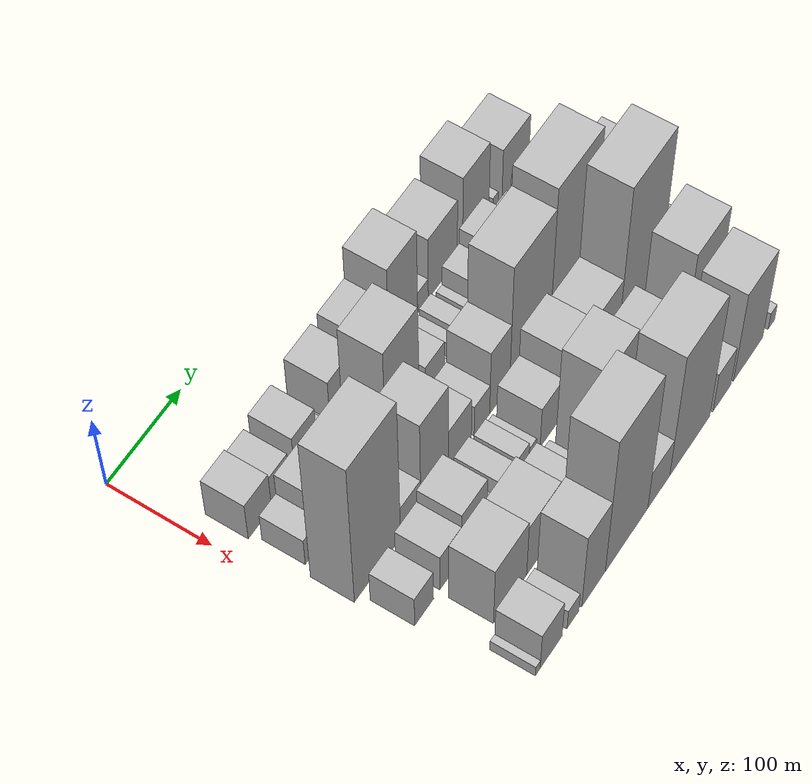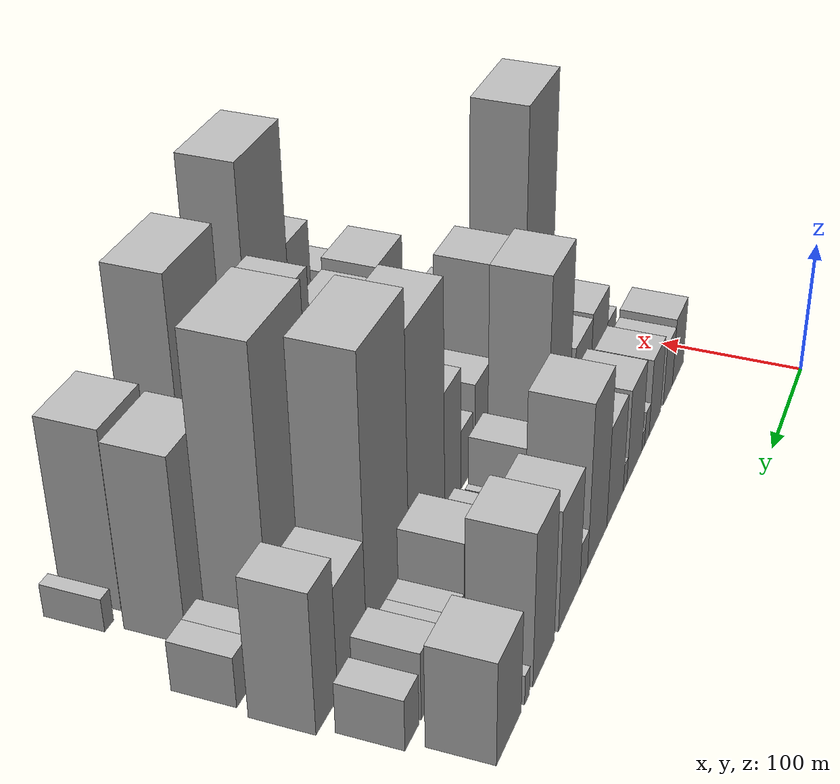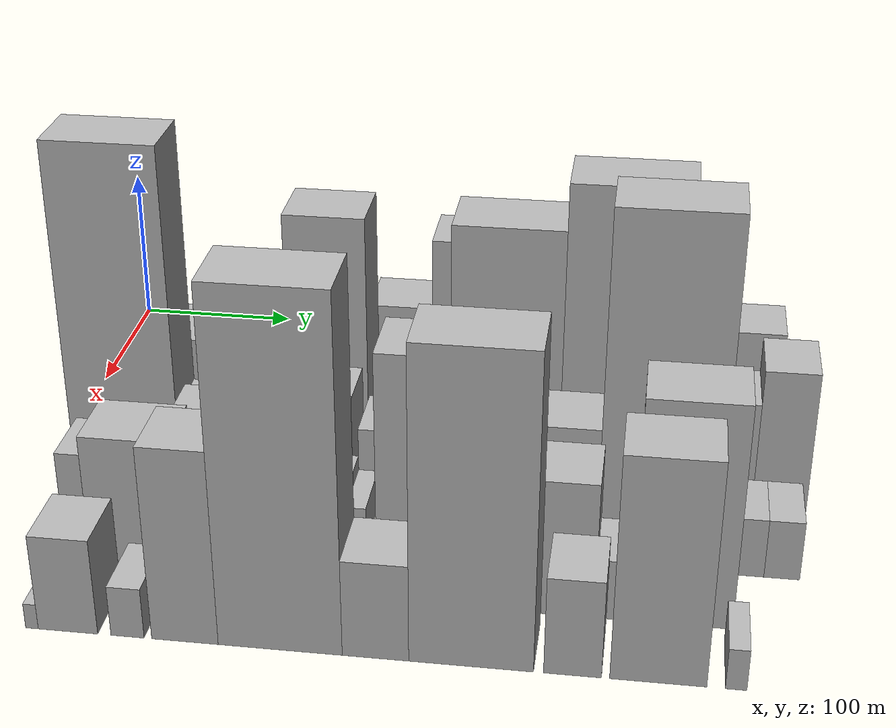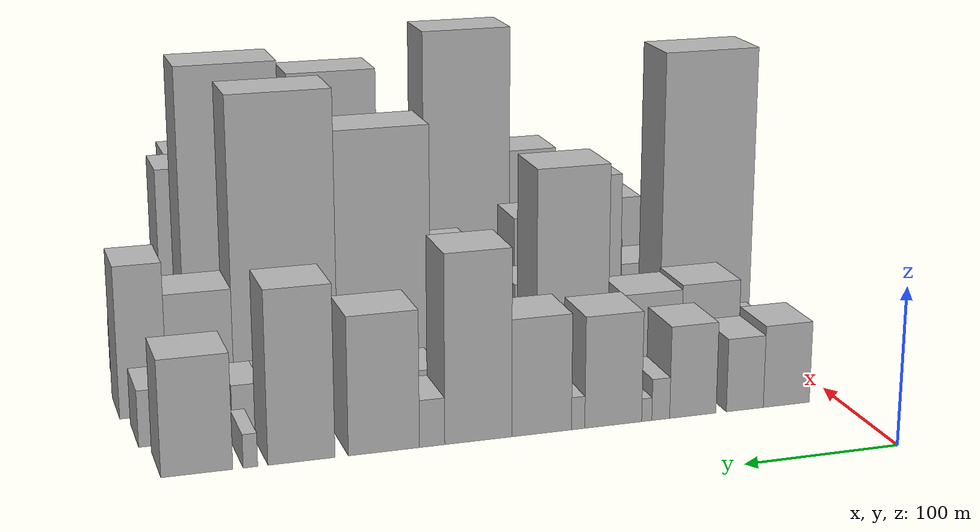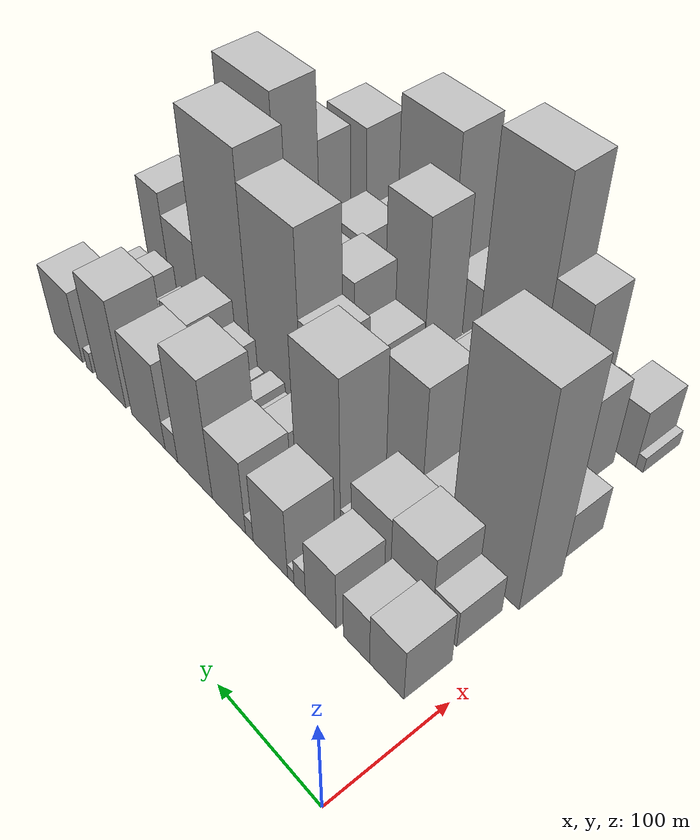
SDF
<sdf version="1.6">
 <world name="default">
  <model name="building_23">
   <static>1</static>
   <pose>100.0000 35.5029 0 0.000000 0.000000 0.000000</pose>
   <link name="link">
    <pose>0 0 27.00 0 0 0</pose>
    <collision name="collision"><geometry><box><size>40.0000 31.7907 54.0000</size></box></geometry></collision>
    <visual name="visual">
     <cast_shadows>0</cast_shadows>
     <geometry><box><size>40.0000 31.7907 54.0000</size></box></geometry>
     <material>
      <script>
       <uri>model://HANNAS_wall/materials/scripts</uri>
       <uri>model://HANNAS_wall/materials/textures</uri>
       <name>vrc/HANNAS_wall</name>
      </script>
     </material>
    </visual>
   </link>
  </model>
  <model name="building_24">
   <static>1</static>
   <pose>100.0000 63.9876 0 0.000000 0.000000 0.000000</pose>
   <link name="link">
    <pose>0 0 24.00 0 0 0</pose>
    <collision name="collision"><geometry><box><size>40.0000 25.1787 48.0000</size></box></geometry></collision>
    <visual name="visual">
     <cast_shadows>0</cast_shadows>
     <geometry><box><size>40.0000 25.1787 48.0000</size></box></geometry>
     <material>
      <script>
       <uri>model://HANNAS_wall/materials/scripts</uri>
       <uri>model://HANNAS_wall/materials/textures</uri>
       <name>vrc/HANNAS_wall</name>
      </script>
     </material>
    </visual>
   </link>
  </model>
  <model name="building_25">
   <static>1</static>
   <pose>100.0000 99.1580 0 0.000000 0.000000 0.000000</pose>
   <link name="link">
    <pose>0 0 30.00 0 0 0</pose>
    <collision name="collision"><geometry><box><size>40.0000 31.1621 60.0000</size></box></geometry></collision>
    <visual name="visual">
     <cast_shadows>0</cast_shadows>
     <geometry><box><size>40.0000 31.1621 60.0000</size></box></geometry>
     <material>
      <script>
       <uri>model://HANNAS_wall/materials/scripts</uri>
       <uri>model://HANNAS_wall/materials/textures</uri>
       <name>vrc/HANNAS_wall</name>
      </script>
     </material>
    </visual>
   </link>
  </model>
  <model name="building_26">
   <static>1</static>
   <pose>100.0000 120.6568 0 0.000000 0.000000 0.000000</pose>
   <link name="link">
    <pose>0 0 13.50 0 0 0</pose>
    <collision name="collision"><geometry><box><size>40.0000 11.8354 27.0000</size></box></geometry></collision>
    <visual name="visual">
     <cast_shadows>0</cast_shadows>
     <geometry><box><size>40.0000 11.8354 27.0000</size></box></geometry>
     <material>
      <script>
       <uri>model://HANNAS_wall/materials/scripts</uri>
       <uri>model://HANNAS_wall/materials/textures</uri>
       <name>vrc/HANNAS_wall</name>
      </script>
     </material>
    </visual>
   </link>
  </model>
  <model name="building_27">
   <static>1</static>
   <pose>100.0000 129.9507 0 0.000000 0.000000 0.000000</pose>
   <link name="link">
    <pose>0 0 7.50 0 0 0</pose>
    <collision name="collision"><geometry><box><size>40.0000 6.7524 15.0000</size></box></geometry></collision>
    <visual name="visual">
     <cast_shadows>0</cast_shadows>
     <geometry><box><size>40.0000 6.7524 15.0000</size></box></geometry>
     <material>
      <script>
       <uri>model://HANNAS_wall/materials/scripts</uri>
       <uri>model://HANNAS_wall/materials/textures</uri>
       <name>vrc/HANNAS_wall</name>
      </script>
     </material>
    </visual>
   </link>
  </model>
  <model name="building_28">
   <static>1</static>
   <pose>100.0000 151.9843 0 0.000000 0.000000 0.000000</pose>
   <link name="link">
    <pose>0 0 36.00 0 0 0</pose>
    <collision name="collision"><geometry><box><size>40.0000 37.3149 72.0000</size></box></geometry></collision>
    <visual name="visual">
     <cast_shadows>0</cast_shadows>
     <geometry><box><size>40.0000 37.3149 72.0000</size></box></geometry>
     <material>
      <script>
       <uri>model://HANNAS_wall/materials/scripts</uri>
       <uri>model://HANNAS_wall/materials/textures</uri>
       <name>vrc/HANNAS_wall</name>
      </script>
     </material>
    </visual>
   </link>
  </model>
  <model name="building_29">
   <static>1</static>
   <pose>100.0000 174.9527 0 0.000000 0.000000 0.000000</pose>
   <link name="link">
    <pose>0 0 10.50 0 0 0</pose>
    <collision name="collision"><geometry><box><size>40.0000 8.6219 21.0000</size></box></geometry></collision>
    <visual name="visual">
     <cast_shadows>0</cast_shadows>
     <geometry><box><size>40.0000 8.6219 21.0000</size></box></geometry>
     <material>
      <script>
       <uri>model://HANNAS_wall/materials/scripts</uri>
       <uri>model://HANNAS_wall/materials/textures</uri>
       <name>vrc/HANNAS_wall</name>
      </script>
     </material>
    </visual>
   </link>
  </model>
  <model name="building_30">
   <static>1</static>
   <pose>100.0000 198.4365 0 0.000000 0.000000 0.000000</pose>
   <link name="link">
    <pose>0 0 37.50 0 0 0</pose>
    <collision name="collision"><geometry><box><size>40.0000 38.3456 75.0000</size></box></geometry></collision>
    <visual name="visual">
     <cast_shadows>0</cast_shadows>
     <geometry><box><size>40.0000 38.3456 75.0000</size></box></geometry>
     <material>
      <script>
       <uri>model://HANNAS_wall/materials/scripts</uri>
       <uri>model://HANNAS_wall/materials/textures</uri>
       <name>vrc/HANNAS_wall</name>
      </script>
     </material>
    </visual>
   </link>
  </model>
  <model name="building_31">
   <static>1</static>
   <pose>100.0000 238.6785 0 0.000000 0.000000 0.000000</pose>
   <link name="link">
    <pose>0 0 60.00 0 0 0</pose>
    <collision name="collision"><geometry><box><size>40.0000 42.1383 120.0000</size></box></geometry></collision>
    <visual name="visual">
     <cast_shadows>0</cast_shadows>
     <geometry><box><size>40.0000 42.1383 120.0000</size></box></geometry>
     <material>
      <script>
       <uri>model://HANNAS_wall/materials/scripts</uri>
       <uri>model://HANNAS_wall/materials/textures</uri>
       <name>vrc/HANNAS_wall</name>
      </script>
     </material>
    </visual>
   </link>
  </model>
  <model name="building_32">
   <static>1</static>
   <pose>100.0000 267.6383 0 0.000000 0.000000 0.000000</pose>
   <link name="link">
    <pose>0 0 15.00 0 0 0</pose>
    <collision name="collision"><geometry><box><size>40.0000 15.7814 30.0000</size></box></geometry></collision>
    <visual name="visual">
     <cast_shadows>0</cast_shadows>
     <geometry><box><size>40.0000 15.7814 30.0000</size></box></geometry>
     <material>
      <script>
       <uri>model://HANNAS_wall/materials/scripts</uri>
       <uri>model://HANNAS_wall/materials/textures</uri>
       <name>vrc/HANNAS_wall</name>
      </script>
     </material>
    </visual>
   </link>
  </model>
  <model name="building_33">
   <static>1</static>
   <pose>100.0000 297.3346 0 0.000000 0.000000 0.000000</pose>
   <link name="link">
    <pose>0 0 43.50 0 0 0</pose>
    <collision name="collision"><geometry><box><size>40.0000 43.6112 87.0000</size></box></geometry></collision>
    <visual name="visual">
     <cast_shadows>0</cast_shadows>
     <geometry><box><size>40.0000 43.6112 87.0000</size></box></geometry>
     <material>
      <script>
       <uri>model://HANNAS_wall/materials/scripts</uri>
       <uri>model://HANNAS_wall/materials/textures</uri>
       <name>vrc/HANNAS_wall</name>
      </script>
     </material>
    </visual>
   </link>
  </model>
  <model name="building_34">
   <static>1</static>
   <pose>100.0000 347.2639 0 0.000000 0.000000 0.000000</pose>
   <link name="link">
    <pose>0 0 54.00 0 0 0</pose>
    <collision name="collision"><geometry><box><size>40.0000 40.2474 108.0000</size></box></geometry></collision>
    <visual name="visual">
     <cast_shadows>0</cast_shadows>
     <geometry><box><size>40.0000 40.2474 108.0000</size></box></geometry>
     <material>
      <script>
       <uri>model://HANNAS_wall/materials/scripts</uri>
       <uri>model://HANNAS_wall/materials/textures</uri>
       <name>vrc/HANNAS_wall</name>
      </script>
     </material>
    </visual>
   </link>
  </model>
  <model name="building_35">
   <static>1</static>
   <pose>100.0000 377.7014 0 0.000000 0.000000 0.000000</pose>
   <link name="link">
    <pose>0 0 10.50 0 0 0</pose>
    <collision name="collision"><geometry><box><size>40.0000 8.6275 21.0000</size></box></geometry></collision>
    <visual name="visual">
     <cast_shadows>0</cast_shadows>
     <geometry><box><size>40.0000 8.6275 21.0000</size></box></geometry>
     <material>
      <script>
       <uri>model://HANNAS_wall/materials/scripts</uri>
       <uri>model://HANNAS_wall/materials/textures</uri>
       <name>vrc/HANNAS_wall</name>
      </script>
     </material>
    </visual>
   </link>
  </model>
  <model name="building_36">
   <static>1</static>
   <pose>100.0000 408.9904 0 0.000000 0.000000 0.000000</pose>
   <link name="link">
    <pose>0 0 36.00 0 0 0</pose>
    <collision name="collision"><geometry><box><size>40.0000 41.9505 72.0000</size></box></geometry></collision>
    <visual name="visual">
     <cast_shadows>0</cast_shadows>
     <geometry><box><size>40.0000 41.9505 72.0000</size></box></geometry>
     <material>
      <script>
       <uri>model://HANNAS_wall/materials/scripts</uri>
       <uri>model://HANNAS_wall/materials/textures</uri>
       <name>vrc/HANNAS_wall</name>
      </script>
     </material>
    </visual>
   </link>
  </model>
  <model name="building_69">
   <static>1</static>
   <pose>149.0000 36.1808 0 0.000000 0.000000 0.000000</pose>
   <link name="link">
    <pose>0 0 19.50 0 0 0</pose>
    <collision name="collision"><geometry><box><size>40.0000 22.6350 39.0000</size></box></geometry></collision>
    <visual name="visual">
     <cast_shadows>0</cast_shadows>
     <geometry><box><size>40.0000 22.6350 39.0000</size></box></geometry>
     <material>
      <script>
       <uri>model://HANNAS_wall/materials/scripts</uri>
       <uri>model://HANNAS_wall/materials/textures</uri>
       <name>vrc/HANNAS_wall</name>
      </script>
     </material>
    </visual>
   </link>
  </model>
  <model name="building_70">
   <static>1</static>
   <pose>149.0000 67.4832 0 0.000000 0.000000 0.000000</pose>
   <link name="link">
    <pose>0 0 34.50 0 0 0</pose>
    <collision name="collision"><geometry><box><size>40.0000 39.9698 69.0000</size></box></geometry></collision>
    <visual name="visual">
     <cast_shadows>0</cast_shadows>
     <geometry><box><size>40.0000 39.9698 69.0000</size></box></geometry>
     <material>
      <script>
       <uri>model://HANNAS_wall/materials/scripts</uri>
       <uri>model://HANNAS_wall/materials/textures</uri>
       <name>vrc/HANNAS_wall</name>
      </script>
     </material>
    </visual>
   </link>
  </model>
  <model name="building_71">
   <static>1</static>
   <pose>149.0000 107.2669 0 0.000000 0.000000 0.000000</pose>
   <link name="link">
    <pose>0 0 33.00 0 0 0</pose>
    <collision name="collision"><geometry><box><size>40.0000 39.5975 66.0000</size></box></geometry></collision>
    <visual name="visual">
     <cast_shadows>0</cast_shadows>
     <geometry><box><size>40.0000 39.5975 66.0000</size></box></geometry>
     <material>
      <script>
       <uri>model://HANNAS_wall/materials/scripts</uri>
       <uri>model://HANNAS_wall/materials/textures</uri>
       <name>vrc/HANNAS_wall</name>
      </script>
     </material>
    </visual>
   </link>
  </model>
  <model name="building_72">
   <static>1</static>
   <pose>149.0000 132.5299 0 0.000000 0.000000 0.000000</pose>
   <link name="link">
    <pose>0 0 13.50 0 0 0</pose>
    <collision name="collision"><geometry><box><size>40.0000 10.9285 27.0000</size></box></geometry></collision>
    <visual name="visual">
     <cast_shadows>0</cast_shadows>
     <geometry><box><size>40.0000 10.9285 27.0000</size></box></geometry>
     <material>
      <script>
       <uri>model://HANNAS_wall/materials/scripts</uri>
       <uri>model://HANNAS_wall/materials/textures</uri>
       <name>vrc/HANNAS_wall</name>
      </script>
     </material>
    </visual>
   </link>
  </model>
  <model name="building_73">
   <static>1</static>
   <pose>149.0000 161.9087 0 0.000000 0.000000 0.000000</pose>
   <link name="link">
    <pose>0 0 76.50 0 0 0</pose>
    <collision name="collision"><geometry><box><size>40.0000 47.8291 153.0000</size></box></geometry></collision>
    <visual name="visual">
     <cast_shadows>0</cast_shadows>
     <geometry><box><size>40.0000 47.8291 153.0000</size></box></geometry>
     <material>
      <script>
       <uri>model://HANNAS_wall/materials/scripts</uri>
       <uri>model://HANNAS_wall/materials/textures</uri>
       <name>vrc/HANNAS_wall</name>
      </script>
     </material>
    </visual>
   </link>
  </model>
  <model name="building_74">
   <static>1</static>
   <pose>149.0000 208.8292 0 0.000000 0.000000 0.000000</pose>
   <link name="link">
    <pose>0 0 25.50 0 0 0</pose>
    <collision name="collision"><geometry><box><size>40.0000 28.0120 51.0000</size></box></geometry></collision>
    <visual name="visual">
     <cast_shadows>0</cast_shadows>
     <geometry><box><size>40.0000 28.0120 51.0000</size></box></geometry>
     <material>
      <script>
       <uri>model://HANNAS_wall/materials/scripts</uri>
       <uri>model://HANNAS_wall/materials/textures</uri>
       <name>vrc/HANNAS_wall</name>
      </script>
     </material>
    </visual>
   </link>
  </model>
  <model name="building_75">
   <static>1</static>
   <pose>149.0000 225.8930 0 0.000000 0.000000 0.000000</pose>
   <link name="link">
    <pose>0 0 7.50 0 0 0</pose>
    <collision name="collision"><geometry><box><size>40.0000 6.1156 15.0000</size></box></geometry></collision>
    <visual name="visual">
     <cast_shadows>0</cast_shadows>
     <geometry><box><size>40.0000 6.1156 15.0000</size></box></geometry>
     <material>
      <script>
       <uri>model://HANNAS_wall/materials/scripts</uri>
       <uri>model://HANNAS_wall/materials/textures</uri>
       <name>vrc/HANNAS_wall</name>
      </script>
     </material>
    </visual>
   </link>
  </model>
  <model name="building_76">
   <static>1</static>
   <pose>149.0000 243.1182 0 0.000000 0.000000 0.000000</pose>
   <link name="link">
    <pose>0 0 10.50 0 0 0</pose>
    <collision name="collision"><geometry><box><size>40.0000 10.3347 21.0000</size></box></geometry></collision>
    <visual name="visual">
     <cast_shadows>0</cast_shadows>
     <geometry><box><size>40.0000 10.3347 21.0000</size></box></geometry>
     <material>
      <script>
       <uri>model://HANNAS_wall/materials/scripts</uri>
       <uri>model://HANNAS_wall/materials/textures</uri>
       <name>vrc/HANNAS_wall</name>
      </script>
     </material>
    </visual>
   </link>
  </model>
  <model name="building_77">
   <static>1</static>
   <pose>149.0000 256.8035 0 0.000000 0.000000 0.000000</pose>
   <link name="link">
    <pose>0 0 15.00 0 0 0</pose>
    <collision name="collision"><geometry><box><size>40.0000 17.0359 30.0000</size></box></geometry></collision>
    <visual name="visual">
     <cast_shadows>0</cast_shadows>
     <geometry><box><size>40.0000 17.0359 30.0000</size></box></geometry>
     <material>
      <script>
       <uri>model://HANNAS_wall/materials/scripts</uri>
       <uri>model://HANNAS_wall/materials/textures</uri>
       <name>vrc/HANNAS_wall</name>
      </script>
     </material>
    </visual>
   </link>
  </model>
  <model name="building_78">
   <static>1</static>
   <pose>149.0000 277.6203 0 0.000000 0.000000 0.000000</pose>
   <link name="link">
    <pose>0 0 10.50 0 0 0</pose>
    <collision name="collision"><geometry><box><size>40.0000 8.5977 21.0000</size></box></geometry></collision>
    <visual name="visual">
     <cast_shadows>0</cast_shadows>
     <geometry><box><size>40.0000 8.5977 21.0000</size></box></geometry>
     <material>
      <script>
       <uri>model://HANNAS_wall/materials/scripts</uri>
       <uri>model://HANNAS_wall/materials/textures</uri>
       <name>vrc/HANNAS_wall</name>
      </script>
     </material>
    </visual>
   </link>
  </model>
  <model name="building_79">
   <static>1</static>
   <pose>149.0000 294.7718 0 0.000000 0.000000 0.000000</pose>
   <link name="link">
    <pose>0 0 24.00 0 0 0</pose>
    <collision name="collision"><geometry><box><size>40.0000 25.7053 48.0000</size></box></geometry></collision>
    <visual name="visual">
     <cast_shadows>0</cast_shadows>
     <geometry><box><size>40.0000 25.7053 48.0000</size></box></geometry>
     <material>
      <script>
       <uri>model://HANNAS_wall/materials/scripts</uri>
       <uri>model://HANNAS_wall/materials/textures</uri>
       <name>vrc/HANNAS_wall</name>
      </script>
     </material>
    </visual>
   </link>
  </model>
  <model name="building_80">
   <static>1</static>
   <pose>149.0000 325.1188 0 0.000000 0.000000 0.000000</pose>
   <link name="link">
    <pose>0 0 34.50 0 0 0</pose>
    <collision name="collision"><geometry><box><size>40.0000 34.9887 69.0000</size></box></geometry></collision>
    <visual name="visual">
     <cast_shadows>0</cast_shadows>
     <geometry><box><size>40.0000 34.9887 69.0000</size></box></geometry>
     <material>
      <script>
       <uri>model://HANNAS_wall/materials/scripts</uri>
       <uri>model://HANNAS_wall/materials/textures</uri>
       <name>vrc/HANNAS_wall</name>
      </script>
     </material>
    </visual>
   </link>
  </model>
  <model name="building_81">
   <static>1</static>
   <pose>149.0000 351.9429 0 0.000000 0.000000 0.000000</pose>
   <link name="link">
    <pose>0 0 16.50 0 0 0</pose>
    <collision name="collision"><geometry><box><size>40.0000 18.6596 33.0000</size></box></geometry></collision>
    <visual name="visual">
     <cast_shadows>0</cast_shadows>
     <geometry><box><size>40.0000 18.6596 33.0000</size></box></geometry>
     <material>
      <script>
       <uri>model://HANNAS_wall/materials/scripts</uri>
       <uri>model://HANNAS_wall/materials/textures</uri>
       <name>vrc/HANNAS_wall</name>
      </script>
     </material>
    </visual>
   </link>
  </model>
  <model name="building_82">
   <static>1</static>
   <pose>149.0000 370.4144 0 0.000000 0.000000 0.000000</pose>
   <link name="link">
    <pose>0 0 16.50 0 0 0</pose>
    <collision name="collision"><geometry><box><size>40.0000 18.2834 33.0000</size></box></geometry></collision>
    <visual name="visual">
     <cast_shadows>0</cast_shadows>
     <geometry><box><size>40.0000 18.2834 33.0000</size></box></geometry>
     <material>
      <script>
       <uri>model://HANNAS_wall/materials/scripts</uri>
       <uri>model://HANNAS_wall/materials/textures</uri>
       <name>vrc/HANNAS_wall</name>
      </script>
     </material>
    </visual>
   </link>
  </model>
  <model name="building_83">
   <static>1</static>
   <pose>149.0000 399.3606 0 0.000000 0.000000 0.000000</pose>
   <link name="link">
    <pose>0 0 24.00 0 0 0</pose>
    <collision name="collision"><geometry><box><size>40.0000 25.6090 48.0000</size></box></geometry></collision>
    <visual name="visual">
     <cast_shadows>0</cast_shadows>
     <geometry><box><size>40.0000 25.6090 48.0000</size></box></geometry>
     <material>
      <script>
       <uri>model://HANNAS_wall/materials/scripts</uri>
       <uri>model://HANNAS_wall/materials/textures</uri>
       <name>vrc/HANNAS_wall</name>
      </script>
     </material>
    </visual>
   </link>
  </model>
  <model name="building_84">
   <static>1</static>
   <pose>149.0000 425.7393 0 0.000000 0.000000 0.000000</pose>
   <link name="link">
    <pose>0 0 18.00 0 0 0</pose>
    <collision name="collision"><geometry><box><size>40.0000 21.1485 36.0000</size></box></geometry></collision>
    <visual name="visual">
     <cast_shadows>0</cast_shadows>
     <geometry><box><size>40.0000 21.1485 36.0000</size></box></geometry>
     <material>
      <script>
       <uri>model://HANNAS_wall/materials/scripts</uri>
       <uri>model://HANNAS_wall/materials/textures</uri>
       <name>vrc/HANNAS_wall</name>
      </script>
     </material>
    </visual>
   </link>
  </model>
  <model name="building_119">
   <static>1</static>
   <pose>198.0000 50.6320 0 0.000000 0.000000 0.000000</pose>
   <link name="link">
    <pose>0 0 105.00 0 0 0</pose>
    <collision name="collision"><geometry><box><size>40.0000 64.4771 210.0000</size></box></geometry></collision>
    <visual name="visual">
     <cast_shadows>0</cast_shadows>
     <geometry><box><size>40.0000 64.4771 210.0000</size></box></geometry>
     <material>
      <script>
       <uri>model://HANNAS_wall/materials/scripts</uri>
       <uri>model://HANNAS_wall/materials/textures</uri>
       <name>vrc/HANNAS_wall</name>
      </script>
     </material>
    </visual>
   </link>
  </model>
  <model name="building_120">
   <static>1</static>
   <pose>198.0000 97.1972 0 0.000000 0.000000 0.000000</pose>
   <link name="link">
    <pose>0 0 24.00 0 0 0</pose>
    <collision name="collision"><geometry><box><size>40.0000 28.6533 48.0000</size></box></geometry></collision>
    <visual name="visual">
     <cast_shadows>0</cast_shadows>
     <geometry><box><size>40.0000 28.6533 48.0000</size></box></geometry>
     <material>
      <script>
       <uri>model://HANNAS_wall/materials/scripts</uri>
       <uri>model://HANNAS_wall/materials/textures</uri>
       <name>vrc/HANNAS_wall</name>
      </script>
     </material>
    </visual>
   </link>
  </model>
  <model name="building_121">
   <static>1</static>
   <pose>198.0000 131.5116 0 0.000000 0.000000 0.000000</pose>
   <link name="link">
    <pose>0 0 66.00 0 0 0</pose>
    <collision name="collision"><geometry><box><size>40.0000 39.9755 132.0000</size></box></geometry></collision>
    <visual name="visual">
     <cast_shadows>0</cast_shadows>
     <geometry><box><size>40.0000 39.9755 132.0000</size></box></geometry>
     <material>
      <script>
       <uri>model://HANNAS_wall/materials/scripts</uri>
       <uri>model://HANNAS_wall/materials/textures</uri>
       <name>vrc/HANNAS_wall</name>
      </script>
     </material>
    </visual>
   </link>
  </model>
  <model name="building_122">
   <static>1</static>
   <pose>198.0000 168.0279 0 0.000000 0.000000 0.000000</pose>
   <link name="link">
    <pose>0 0 31.50 0 0 0</pose>
    <collision name="collision"><geometry><box><size>40.0000 33.0569 63.0000</size></box></geometry></collision>
    <visual name="visual">
     <cast_shadows>0</cast_shadows>
     <geometry><box><size>40.0000 33.0569 63.0000</size></box></geometry>
     <material>
      <script>
       <uri>model://HANNAS_wall/materials/scripts</uri>
       <uri>model://HANNAS_wall/materials/textures</uri>
       <name>vrc/HANNAS_wall</name>
      </script>
     </material>
    </visual>
   </link>
  </model>
  <model name="building_123">
   <static>1</static>
   <pose>198.0000 200.0467 0 0.000000 0.000000 0.000000</pose>
   <link name="link">
    <pose>0 0 22.50 0 0 0</pose>
    <collision name="collision"><geometry><box><size>40.0000 22.9807 45.0000</size></box></geometry></collision>
    <visual name="visual">
     <cast_shadows>0</cast_shadows>
     <geometry><box><size>40.0000 22.9807 45.0000</size></box></geometry>
     <material>
      <script>
       <uri>model://HANNAS_wall/materials/scripts</uri>
       <uri>model://HANNAS_wall/materials/textures</uri>
       <name>vrc/HANNAS_wall</name>
      </script>
     </material>
    </visual>
   </link>
  </model>
  <model name="building_124">
   <static>1</static>
   <pose>198.0000 226.5205 0 0.000000 0.000000 0.000000</pose>
   <link name="link">
    <pose>0 0 46.50 0 0 0</pose>
    <collision name="collision"><geometry><box><size>40.0000 29.9669 93.0000</size></box></geometry></collision>
    <visual name="visual">
     <cast_shadows>0</cast_shadows>
     <geometry><box><size>40.0000 29.9669 93.0000</size></box></geometry>
     <material>
      <script>
       <uri>model://HANNAS_wall/materials/scripts</uri>
       <uri>model://HANNAS_wall/materials/textures</uri>
       <name>vrc/HANNAS_wall</name>
      </script>
     </material>
    </visual>
   </link>
  </model>
  <model name="building_125">
   <static>1</static>
   <pose>198.0000 272.2306 0 0.000000 0.000000 0.000000</pose>
   <link name="link">
    <pose>0 0 87.00 0 0 0</pose>
    <collision name="collision"><geometry><box><size>40.0000 61.4535 174.0000</size></box></geometry></collision>
    <visual name="visual">
     <cast_shadows>0</cast_shadows>
     <geometry><box><size>40.0000 61.4535 174.0000</size></box></geometry>
     <material>
      <script>
       <uri>model://HANNAS_wall/materials/scripts</uri>
       <uri>model://HANNAS_wall/materials/textures</uri>
       <name>vrc/HANNAS_wall</name>
      </script>
     </material>
    </visual>
   </link>
  </model>
  <model name="building_126">
   <static>1</static>
   <pose>198.0000 336.2994 0 0.000000 0.000000 0.000000</pose>
   <link name="link">
    <pose>0 0 100.50 0 0 0</pose>
    <collision name="collision"><geometry><box><size>40.0000 66.6841 201.0000</size></box></geometry></collision>
    <visual name="visual">
     <cast_shadows>0</cast_shadows>
     <geometry><box><size>40.0000 66.6841 201.0000</size></box></geometry>
     <material>
      <script>
       <uri>model://HANNAS_wall/materials/scripts</uri>
       <uri>model://HANNAS_wall/materials/textures</uri>
       <name>vrc/HANNAS_wall</name>
      </script>
     </material>
    </visual>
   </link>
  </model>
  <model name="building_127">
   <static>1</static>
   <pose>198.0000 390.7154 0 0.000000 0.000000 0.000000</pose>
   <link name="link">
    <pose>0 0 39.00 0 0 0</pose>
    <collision name="collision"><geometry><box><size>40.0000 42.1477 78.0000</size></box></geometry></collision>
    <visual name="visual">
     <cast_shadows>0</cast_shadows>
     <geometry><box><size>40.0000 42.1477 78.0000</size></box></geometry>
     <material>
      <script>
       <uri>model://HANNAS_wall/materials/scripts</uri>
       <uri>model://HANNAS_wall/materials/textures</uri>
       <name>vrc/HANNAS_wall</name>
      </script>
     </material>
    </visual>
   </link>
  </model>
  <model name="building_128">
   <static>1</static>
   <pose>198.0000 426.7257 0 0.000000 0.000000 0.000000</pose>
   <link name="link">
    <pose>0 0 49.50 0 0 0</pose>
    <collision name="collision"><geometry><box><size>40.0000 29.8729 99.0000</size></box></geometry></collision>
    <visual name="visual">
     <cast_shadows>0</cast_shadows>
     <geometry><box><size>40.0000 29.8729 99.0000</size></box></geometry>
     <material>
      <script>
       <uri>model://HANNAS_wall/materials/scripts</uri>
       <uri>model://HANNAS_wall/materials/textures</uri>
       <name>vrc/HANNAS_wall</name>
      </script>
     </material>
    </visual>
   </link>
  </model>
  <model name="building_169">
   <static>1</static>
   <pose>247.0000 39.5923 0 0.000000 0.000000 0.000000</pose>
   <link name="link">
    <pose>0 0 22.50 0 0 0</pose>
    <collision name="collision"><geometry><box><size>40.0000 26.4182 45.0000</size></box></geometry></collision>
    <visual name="visual">
     <cast_shadows>0</cast_shadows>
     <geometry><box><size>40.0000 26.4182 45.0000</size></box></geometry>
     <material>
      <script>
       <uri>model://HANNAS_wall/materials/scripts</uri>
       <uri>model://HANNAS_wall/materials/textures</uri>
       <name>vrc/HANNAS_wall</name>
      </script>
     </material>
    </visual>
   </link>
  </model>
  <model name="building_170">
   <static>1</static>
   <pose>247.0000 77.0385 0 0.000000 0.000000 0.000000</pose>
   <link name="link">
    <pose>0 0 27.00 0 0 0</pose>
    <collision name="collision"><geometry><box><size>40.0000 30.4743 54.0000</size></box></geometry></collision>
    <visual name="visual">
     <cast_shadows>0</cast_shadows>
     <geometry><box><size>40.0000 30.4743 54.0000</size></box></geometry>
     <material>
      <script>
       <uri>model://HANNAS_wall/materials/scripts</uri>
       <uri>model://HANNAS_wall/materials/textures</uri>
       <name>vrc/HANNAS_wall</name>
      </script>
     </material>
    </visual>
   </link>
  </model>
  <model name="building_171">
   <static>1</static>
   <pose>247.0000 110.5196 0 0.000000 0.000000 0.000000</pose>
   <link name="link">
    <pose>0 0 36.00 0 0 0</pose>
    <collision name="collision"><geometry><box><size>40.0000 36.4880 72.0000</size></box></geometry></collision>
    <visual name="visual">
     <cast_shadows>0</cast_shadows>
     <geometry><box><size>40.0000 36.4880 72.0000</size></box></geometry>
     <material>
      <script>
       <uri>model://HANNAS_wall/materials/scripts</uri>
       <uri>model://HANNAS_wall/materials/textures</uri>
       <name>vrc/HANNAS_wall</name>
      </script>
     </material>
    </visual>
   </link>
  </model>
  <model name="building_172">
   <static>1</static>
   <pose>247.0000 133.0156 0 0.000000 0.000000 0.000000</pose>
   <link name="link">
    <pose>0 0 9.00 0 0 0</pose>
    <collision name="collision"><geometry><box><size>40.0000 8.5040 18.0000</size></box></geometry></collision>
    <visual name="visual">
     <cast_shadows>0</cast_shadows>
     <geometry><box><size>40.0000 8.5040 18.0000</size></box></geometry>
     <material>
      <script>
       <uri>model://HANNAS_wall/materials/scripts</uri>
       <uri>model://HANNAS_wall/materials/textures</uri>
       <name>vrc/HANNAS_wall</name>
      </script>
     </material>
    </visual>
   </link>
  </model>
  <model name="building_173">
   <static>1</static>
   <pose>247.0000 140.9653 0 0.000000 0.000000 0.000000</pose>
   <link name="link">
    <pose>0 0 9.00 0 0 0</pose>
    <collision name="collision"><geometry><box><size>40.0000 7.3953 18.0000</size></box></geometry></collision>
    <visual name="visual">
     <cast_shadows>0</cast_shadows>
     <geometry><box><size>40.0000 7.3953 18.0000</size></box></geometry>
     <material>
      <script>
       <uri>model://HANNAS_wall/materials/scripts</uri>
       <uri>model://HANNAS_wall/materials/textures</uri>
       <name>vrc/HANNAS_wall</name>
      </script>
     </material>
    </visual>
   </link>
  </model>
  <model name="building_174">
   <static>1</static>
   <pose>247.0000 155.4499 0 0.000000 0.000000 0.000000</pose>
   <link name="link">
    <pose>0 0 21.00 0 0 0</pose>
    <collision name="collision"><geometry><box><size>40.0000 21.5740 42.0000</size></box></geometry></collision>
    <visual name="visual">
     <cast_shadows>0</cast_shadows>
     <geometry><box><size>40.0000 21.5740 42.0000</size></box></geometry>
     <material>
      <script>
       <uri>model://HANNAS_wall/materials/scripts</uri>
       <uri>model://HANNAS_wall/materials/textures</uri>
       <name>vrc/HANNAS_wall</name>
      </script>
     </material>
    </visual>
   </link>
  </model>
  <model name="building_175">
   <static>1</static>
   <pose>247.0000 181.7646 0 0.000000 0.000000 0.000000</pose>
   <link name="link">
    <pose>0 0 16.50 0 0 0</pose>
    <collision name="collision"><geometry><box><size>40.0000 17.0555 33.0000</size></box></geometry></collision>
    <visual name="visual">
     <cast_shadows>0</cast_shadows>
     <geometry><box><size>40.0000 17.0555 33.0000</size></box></geometry>
     <material>
      <script>
       <uri>model://HANNAS_wall/materials/scripts</uri>
       <uri>model://HANNAS_wall/materials/textures</uri>
       <name>vrc/HANNAS_wall</name>
      </script>
     </material>
    </visual>
   </link>
  </model>
  <model name="building_176">
   <static>1</static>
   <pose>247.0000 195.7464 0 0.000000 0.000000 0.000000</pose>
   <link name="link">
    <pose>0 0 12.00 0 0 0</pose>
    <collision name="collision"><geometry><box><size>40.0000 10.9080 24.0000</size></box></geometry></collision>
    <visual name="visual">
     <cast_shadows>0</cast_shadows>
     <geometry><box><size>40.0000 10.9080 24.0000</size></box></geometry>
     <material>
      <script>
       <uri>model://HANNAS_wall/materials/scripts</uri>
       <uri>model://HANNAS_wall/materials/textures</uri>
       <name>vrc/HANNAS_wall</name>
      </script>
     </material>
    </visual>
   </link>
  </model>
  <model name="building_177">
   <static>1</static>
   <pose>247.0000 223.1815 0 0.000000 0.000000 0.000000</pose>
   <link name="link">
    <pose>0 0 30.00 0 0 0</pose>
    <collision name="collision"><geometry><box><size>40.0000 31.9622 60.0000</size></box></geometry></collision>
    <visual name="visual">
     <cast_shadows>0</cast_shadows>
     <geometry><box><size>40.0000 31.9622 60.0000</size></box></geometry>
     <material>
      <script>
       <uri>model://HANNAS_wall/materials/scripts</uri>
       <uri>model://HANNAS_wall/materials/textures</uri>
       <name>vrc/HANNAS_wall</name>
      </script>
     </material>
    </visual>
   </link>
  </model>
  <model name="building_178">
   <static>1</static>
   <pose>247.0000 258.1174 0 0.000000 0.000000 0.000000</pose>
   <link name="link">
    <pose>0 0 49.50 0 0 0</pose>
    <collision name="collision"><geometry><box><size>40.0000 37.9097 99.0000</size></box></geometry></collision>
    <visual name="visual">
     <cast_shadows>0</cast_shadows>
     <geometry><box><size>40.0000 37.9097 99.0000</size></box></geometry>
     <material>
      <script>
       <uri>model://HANNAS_wall/materials/scripts</uri>
       <uri>model://HANNAS_wall/materials/textures</uri>
       <name>vrc/HANNAS_wall</name>
      </script>
     </material>
    </visual>
   </link>
  </model>
  <model name="building_179">
   <static>1</static>
   <pose>247.0000 306.3224 0 0.000000 0.000000 0.000000</pose>
   <link name="link">
    <pose>0 0 42.00 0 0 0</pose>
    <collision name="collision"><geometry><box><size>40.0000 42.5003 84.0000</size></box></geometry></collision>
    <visual name="visual">
     <cast_shadows>0</cast_shadows>
     <geometry><box><size>40.0000 42.5003 84.0000</size></box></geometry>
     <material>
      <script>
       <uri>model://HANNAS_wall/materials/scripts</uri>
       <uri>model://HANNAS_wall/materials/textures</uri>
       <name>vrc/HANNAS_wall</name>
      </script>
     </material>
    </visual>
   </link>
  </model>
  <model name="building_180">
   <static>1</static>
   <pose>247.0000 360.1728 0 0.000000 0.000000 0.000000</pose>
   <link name="link">
    <pose>0 0 105.00 0 0 0</pose>
    <collision name="collision"><geometry><box><size>40.0000 65.2004 210.0000</size></box></geometry></collision>
    <visual name="visual">
     <cast_shadows>0</cast_shadows>
     <geometry><box><size>40.0000 65.2004 210.0000</size></box></geometry>
     <material>
      <script>
       <uri>model://HANNAS_wall/materials/scripts</uri>
       <uri>model://HANNAS_wall/materials/textures</uri>
       <name>vrc/HANNAS_wall</name>
      </script>
     </material>
    </visual>
   </link>
  </model>
  <model name="building_181">
   <static>1</static>
   <pose>247.0000 408.9769 0 0.000000 0.000000 0.000000</pose>
   <link name="link">
    <pose>0 0 18.00 0 0 0</pose>
    <collision name="collision"><geometry><box><size>40.0000 18.4078 36.0000</size></box></geometry></collision>
    <visual name="visual">
     <cast_shadows>0</cast_shadows>
     <geometry><box><size>40.0000 18.4078 36.0000</size></box></geometry>
     <material>
      <script>
       <uri>model://HANNAS_wall/materials/scripts</uri>
       <uri>model://HANNAS_wall/materials/textures</uri>
       <name>vrc/HANNAS_wall</name>
      </script>
     </material>
    </visual>
   </link>
  </model>
  <model name="building_182">
   <static>1</static>
   <pose>247.0000 427.6834 0 0.000000 0.000000 0.000000</pose>
   <link name="link">
    <pose>0 0 18.00 0 0 0</pose>
    <collision name="collision"><geometry><box><size>40.0000 19.0053 36.0000</size></box></geometry></collision>
    <visual name="visual">
     <cast_shadows>0</cast_shadows>
     <geometry><box><size>40.0000 19.0053 36.0000</size></box></geometry>
     <material>
      <script>
       <uri>model://HANNAS_wall/materials/scripts</uri>
       <uri>model://HANNAS_wall/materials/textures</uri>
       <name>vrc/HANNAS_wall</name>
      </script>
     </material>
    </visual>
   </link>
  </model>
  <model name="building_223">
   <static>1</static>
   <pose>296.0000 83.6164 0 0.000000 0.000000 0.000000</pose>
   <link name="link">
    <pose>0 0 43.50 0 0 0</pose>
    <collision name="collision"><geometry><box><size>40.0000 47.5663 87.0000</size></box></geometry></collision>
    <visual name="visual">
     <cast_shadows>0</cast_shadows>
     <geometry><box><size>40.0000 47.5663 87.0000</size></box></geometry>
     <material>
      <script>
       <uri>model://HANNAS_wall/materials/scripts</uri>
       <uri>model://HANNAS_wall/materials/textures</uri>
       <name>vrc/HANNAS_wall</name>
      </script>
     </material>
    </visual>
   </link>
  </model>
  <model name="building_224">
   <static>1</static>
   <pose>296.0000 130.5056 0 0.000000 0.000000 0.000000</pose>
   <link name="link">
    <pose>0 0 39.00 0 0 0</pose>
    <collision name="collision"><geometry><box><size>40.0000 46.2121 78.0000</size></box></geometry></collision>
    <visual name="visual">
     <cast_shadows>0</cast_shadows>
     <geometry><box><size>40.0000 46.2121 78.0000</size></box></geometry>
     <material>
      <script>
       <uri>model://HANNAS_wall/materials/scripts</uri>
       <uri>model://HANNAS_wall/materials/textures</uri>
       <name>vrc/HANNAS_wall</name>
      </script>
     </material>
    </visual>
   </link>
  </model>
  <model name="building_225">
   <static>1</static>
   <pose>296.0000 171.3871 0 0.000000 0.000000 0.000000</pose>
   <link name="link">
    <pose>0 0 25.50 0 0 0</pose>
    <collision name="collision"><geometry><box><size>40.0000 27.5508 51.0000</size></box></geometry></collision>
    <visual name="visual">
     <cast_shadows>0</cast_shadows>
     <geometry><box><size>40.0000 27.5508 51.0000</size></box></geometry>
     <material>
      <script>
       <uri>model://HANNAS_wall/materials/scripts</uri>
       <uri>model://HANNAS_wall/materials/textures</uri>
       <name>vrc/HANNAS_wall</name>
      </script>
     </material>
    </visual>
   </link>
  </model>
  <model name="building_226">
   <static>1</static>
   <pose>296.0000 190.3432 0 0.000000 0.000000 0.000000</pose>
   <link name="link">
    <pose>0 0 10.50 0 0 0</pose>
    <collision name="collision"><geometry><box><size>40.0000 10.3614 21.0000</size></box></geometry></collision>
    <visual name="visual">
     <cast_shadows>0</cast_shadows>
     <geometry><box><size>40.0000 10.3614 21.0000</size></box></geometry>
     <material>
      <script>
       <uri>model://HANNAS_wall/materials/scripts</uri>
       <uri>model://HANNAS_wall/materials/textures</uri>
       <name>vrc/HANNAS_wall</name>
      </script>
     </material>
    </visual>
   </link>
  </model>
  <model name="building_227">
   <static>1</static>
   <pose>296.0000 200.4929 0 0.000000 0.000000 0.000000</pose>
   <link name="link">
    <pose>0 0 12.00 0 0 0</pose>
    <collision name="collision"><geometry><box><size>40.0000 9.9382 24.0000</size></box></geometry></collision>
    <visual name="visual">
     <cast_shadows>0</cast_shadows>
     <geometry><box><size>40.0000 9.9382 24.0000</size></box></geometry>
     <material>
      <script>
       <uri>model://HANNAS_wall/materials/scripts</uri>
       <uri>model://HANNAS_wall/materials/textures</uri>
       <name>vrc/HANNAS_wall</name>
      </script>
     </material>
    </visual>
   </link>
  </model>
  <model name="building_228">
   <static>1</static>
   <pose>296.0000 238.0235 0 0.000000 0.000000 0.000000</pose>
   <link name="link">
    <pose>0 0 73.50 0 0 0</pose>
    <collision name="collision"><geometry><box><size>40.0000 45.1228 147.0000</size></box></geometry></collision>
    <visual name="visual">
     <cast_shadows>0</cast_shadows>
     <geometry><box><size>40.0000 45.1228 147.0000</size></box></geometry>
     <material>
      <script>
       <uri>model://HANNAS_wall/materials/scripts</uri>
       <uri>model://HANNAS_wall/materials/textures</uri>
       <name>vrc/HANNAS_wall</name>
      </script>
     </material>
    </visual>
   </link>
  </model>
  <model name="building_229">
   <static>1</static>
   <pose>296.0000 274.6437 0 0.000000 0.000000 0.000000</pose>
   <link name="link">
    <pose>0 0 24.00 0 0 0</pose>
    <collision name="collision"><geometry><box><size>40.0000 28.1176 48.0000</size></box></geometry></collision>
    <visual name="visual">
     <cast_shadows>0</cast_shadows>
     <geometry><box><size>40.0000 28.1176 48.0000</size></box></geometry>
     <material>
      <script>
       <uri>model://HANNAS_wall/materials/scripts</uri>
       <uri>model://HANNAS_wall/materials/textures</uri>
       <name>vrc/HANNAS_wall</name>
      </script>
     </material>
    </visual>
   </link>
  </model>
  <model name="building_230">
   <static>1</static>
   <pose>296.0000 309.2800 0 0.000000 0.000000 0.000000</pose>
   <link name="link">
    <pose>0 0 40.50 0 0 0</pose>
    <collision name="collision"><geometry><box><size>40.0000 41.1550 81.0000</size></box></geometry></collision>
    <visual name="visual">
     <cast_shadows>0</cast_shadows>
     <geometry><box><size>40.0000 41.1550 81.0000</size></box></geometry>
     <material>
      <script>
       <uri>model://HANNAS_wall/materials/scripts</uri>
       <uri>model://HANNAS_wall/materials/textures</uri>
       <name>vrc/HANNAS_wall</name>
      </script>
     </material>
    </visual>
   </link>
  </model>
  <model name="building_231">
   <static>1</static>
   <pose>296.0000 339.3554 0 0.000000 0.000000 0.000000</pose>
   <link name="link">
    <pose>0 0 18.00 0 0 0</pose>
    <collision name="collision"><geometry><box><size>40.0000 18.9958 36.0000</size></box></geometry></collision>
    <visual name="visual">
     <cast_shadows>0</cast_shadows>
     <geometry><box><size>40.0000 18.9958 36.0000</size></box></geometry>
     <material>
      <script>
       <uri>model://HANNAS_wall/materials/scripts</uri>
       <uri>model://HANNAS_wall/materials/textures</uri>
       <name>vrc/HANNAS_wall</name>
      </script>
     </material>
    </visual>
   </link>
  </model>
  <model name="building_232">
   <static>1</static>
   <pose>296.0000 374.9214 0 0.000000 0.000000 0.000000</pose>
   <link name="link">
    <pose>0 0 66.00 0 0 0</pose>
    <collision name="collision"><geometry><box><size>40.0000 52.1362 132.0000</size></box></geometry></collision>
    <visual name="visual">
     <cast_shadows>0</cast_shadows>
     <geometry><box><size>40.0000 52.1362 132.0000</size></box></geometry>
     <material>
      <script>
       <uri>model://HANNAS_wall/materials/scripts</uri>
       <uri>model://HANNAS_wall/materials/textures</uri>
       <name>vrc/HANNAS_wall</name>
      </script>
     </material>
    </visual>
   </link>
  </model>
  <model name="building_274">
   <static>1</static>
   <pose>345.0000 43.4696 0 0.000000 0.000000 0.000000</pose>
   <link name="link">
    <pose>0 0 7.50 0 0 0</pose>
    <collision name="collision"><geometry><box><size>40.0000 6.6953 15.0000</size></box></geometry></collision>
    <visual name="visual">
     <cast_shadows>0</cast_shadows>
     <geometry><box><size>40.0000 6.6953 15.0000</size></box></geometry>
     <material>
      <script>
       <uri>model://HANNAS_wall/materials/scripts</uri>
       <uri>model://HANNAS_wall/materials/textures</uri>
       <name>vrc/HANNAS_wall</name>
      </script>
     </material>
    </visual>
   </link>
  </model>
  <model name="building_275">
   <static>1</static>
   <pose>345.0000 62.6498 0 0.000000 0.000000 0.000000</pose>
   <link name="link">
    <pose>0 0 28.50 0 0 0</pose>
    <collision name="collision"><geometry><box><size>40.0000 31.6651 57.0000</size></box></geometry></collision>
    <visual name="visual">
     <cast_shadows>0</cast_shadows>
     <geometry><box><size>40.0000 31.6651 57.0000</size></box></geometry>
     <material>
      <script>
       <uri>model://HANNAS_wall/materials/scripts</uri>
       <uri>model://HANNAS_wall/materials/textures</uri>
       <name>vrc/HANNAS_wall</name>
      </script>
     </material>
    </visual>
   </link>
  </model>
  <model name="building_276">
   <static>1</static>
   <pose>345.0000 94.2384 0 0.000000 0.000000 0.000000</pose>
   <link name="link">
    <pose>0 0 15.00 0 0 0</pose>
    <collision name="collision"><geometry><box><size>40.0000 17.5122 30.0000</size></box></geometry></collision>
    <visual name="visual">
     <cast_shadows>0</cast_shadows>
     <geometry><box><size>40.0000 17.5122 30.0000</size></box></geometry>
     <material>
      <script>
       <uri>model://HANNAS_wall/materials/scripts</uri>
       <uri>model://HANNAS_wall/materials/textures</uri>
       <name>vrc/HANNAS_wall</name>
      </script>
     </material>
    </visual>
   </link>
  </model>
  <model name="building_277">
   <static>1</static>
   <pose>345.0000 124.3982 0 0.000000 0.000000 0.000000</pose>
   <link name="link">
    <pose>0 0 57.00 0 0 0</pose>
    <collision name="collision"><geometry><box><size>40.0000 34.8075 114.0000</size></box></geometry></collision>
    <visual name="visual">
     <cast_shadows>0</cast_shadows>
     <geometry><box><size>40.0000 34.8075 114.0000</size></box></geometry>
     <material>
      <script>
       <uri>model://HANNAS_wall/materials/scripts</uri>
       <uri>model://HANNAS_wall/materials/textures</uri>
       <name>vrc/HANNAS_wall</name>
      </script>
     </material>
    </visual>
   </link>
  </model>
  <model name="building_278">
   <static>1</static>
   <pose>345.0000 173.8348 0 0.000000 0.000000 0.000000</pose>
   <link name="link">
    <pose>0 0 102.00 0 0 0</pose>
    <collision name="collision"><geometry><box><size>40.0000 64.0655 204.0000</size></box></geometry></collision>
    <visual name="visual">
     <cast_shadows>0</cast_shadows>
     <geometry><box><size>40.0000 64.0655 204.0000</size></box></geometry>
     <material>
      <script>
       <uri>model://HANNAS_wall/materials/scripts</uri>
       <uri>model://HANNAS_wall/materials/textures</uri>
       <name>vrc/HANNAS_wall</name>
      </script>
     </material>
    </visual>
   </link>
  </model>
  <model name="building_279">
   <static>1</static>
   <pose>345.0000 222.7962 0 0.000000 0.000000 0.000000</pose>
   <link name="link">
    <pose>0 0 28.50 0 0 0</pose>
    <collision name="collision"><geometry><box><size>40.0000 33.8573 57.0000</size></box></geometry></collision>
    <visual name="visual">
     <cast_shadows>0</cast_shadows>
     <geometry><box><size>40.0000 33.8573 57.0000</size></box></geometry>
     <material>
      <script>
       <uri>model://HANNAS_wall/materials/scripts</uri>
       <uri>model://HANNAS_wall/materials/textures</uri>
       <name>vrc/HANNAS_wall</name>
      </script>
     </material>
    </visual>
   </link>
  </model>
  <model name="building_280">
   <static>1</static>
   <pose>345.0000 271.0871 0 0.000000 0.000000 0.000000</pose>
   <link name="link">
    <pose>0 0 90.00 0 0 0</pose>
    <collision name="collision"><geometry><box><size>40.0000 62.7247 180.0000</size></box></geometry></collision>
    <visual name="visual">
     <cast_shadows>0</cast_shadows>
     <geometry><box><size>40.0000 62.7247 180.0000</size></box></geometry>
     <material>
      <script>
       <uri>model://HANNAS_wall/materials/scripts</uri>
       <uri>model://HANNAS_wall/materials/textures</uri>
       <name>vrc/HANNAS_wall</name>
      </script>
     </material>
    </visual>
   </link>
  </model>
  <model name="building_281">
   <static>1</static>
   <pose>345.0000 321.8052 0 0.000000 0.000000 0.000000</pose>
   <link name="link">
    <pose>0 0 28.50 0 0 0</pose>
    <collision name="collision"><geometry><box><size>40.0000 28.7114 57.0000</size></box></geometry></collision>
    <visual name="visual">
     <cast_shadows>0</cast_shadows>
     <geometry><box><size>40.0000 28.7114 57.0000</size></box></geometry>
     <material>
      <script>
       <uri>model://HANNAS_wall/materials/scripts</uri>
       <uri>model://HANNAS_wall/materials/textures</uri>
       <name>vrc/HANNAS_wall</name>
      </script>
     </material>
    </visual>
   </link>
  </model>
  <model name="building_282">
   <static>1</static>
   <pose>345.0000 363.9663 0 0.000000 0.000000 0.000000</pose>
   <link name="link">
    <pose>0 0 64.50 0 0 0</pose>
    <collision name="collision"><geometry><box><size>40.0000 47.6108 129.0000</size></box></geometry></collision>
    <visual name="visual">
     <cast_shadows>0</cast_shadows>
     <geometry><box><size>40.0000 47.6108 129.0000</size></box></geometry>
     <material>
      <script>
       <uri>model://HANNAS_wall/materials/scripts</uri>
       <uri>model://HANNAS_wall/materials/textures</uri>
       <name>vrc/HANNAS_wall</name>
      </script>
     </material>
    </visual>
   </link>
  </model>
  <model name="building_283">
   <static>1</static>
   <pose>345.0000 401.9924 0 0.000000 0.000000 0.000000</pose>
   <link name="link">
    <pose>0 0 12.00 0 0 0</pose>
    <collision name="collision"><geometry><box><size>40.0000 10.4414 24.0000</size></box></geometry></collision>
    <visual name="visual">
     <cast_shadows>0</cast_shadows>
     <geometry><box><size>40.0000 10.4414 24.0000</size></box></geometry>
     <material>
      <script>
       <uri>model://HANNAS_wall/materials/scripts</uri>
       <uri>model://HANNAS_wall/materials/textures</uri>
       <name>vrc/HANNAS_wall</name>
      </script>
     </material>
    </visual>
   </link>
  </model>
 </world>
</sdf>
